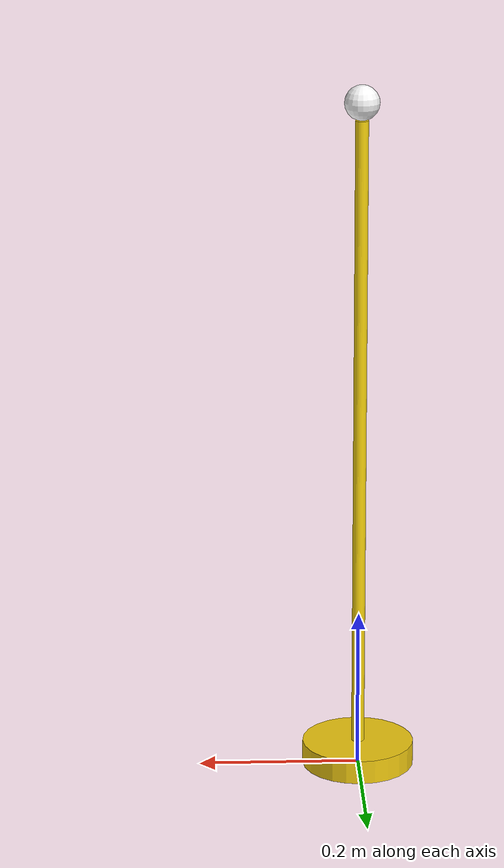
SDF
<?xml version="1.0"?>
<sdf version="1.7">
  <model name="yellow_flare">
    <static>0</static>
    <allow_auto_disable>1</allow_auto_disable>

    <link name="link_0">
      <inertial>
        <mass>0.8</mass>
        <pose>0 0 0.35 0 0 0</pose>
        <inertia>
          <ixx>0.0427</ixx><ixy>0</ixy><ixz>0</ixz>
          <iyy>0.0427</iyy><iyz>0</iyz>
          <izz>0.0002</izz>
        </inertia>
      </inertial>
      <gravity>1</gravity>
      <self_collide>0</self_collide>

      <visual name="foot">
        <pose>0 0 0.015 0 0 0</pose>
        <geometry><cylinder><radius>0.07</radius><length>0.03</length></cylinder></geometry>
        <material>
          <ambient>0.38 0.32 0.02 1</ambient>
          <diffuse>0.93 0.78 0.06 1</diffuse>
          <specular>0.05 0.05 0.05 1</specular>
        </material>
      </visual>

      <visual name="pole">
        <pose>0 0 0.43 0 0 0</pose>
        <geometry><cylinder><radius>0.008</radius><length>0.80</length></cylinder></geometry>
        <material>
          <ambient>0.40 0.34 0.02 1</ambient>
          <diffuse>0.96 0.82 0.05 1</diffuse>
          <specular>0.05 0.05 0.05 1</specular>
        </material>
      </visual>

      <visual name="ball">
        <pose>0 0 0.8515 0 0 0</pose>
        <geometry><sphere><radius>0.0215</radius></sphere></geometry>
        <material>
          <ambient>0.75 0.75 0.75 1</ambient>
          <diffuse>0.97 0.97 0.97 1</diffuse>
          <specular>0.30 0.30 0.30 1</specular>
        </material>
      </visual>

      <collision name="foot_collision">
        <pose>0 0 0.015 0 0 0</pose>
        <geometry><cylinder><radius>0.07</radius><length>0.03</length></cylinder></geometry>
        <surface>
          <friction><ode><mu>1</mu><mu2>1</mu2></ode></friction>
        </surface>
      </collision>

      <collision name="pole_collision">
        <pose>0 0 0.44 0 0 0</pose>
        <geometry><cylinder><radius>0.008</radius><length>0.845</length></cylinder></geometry>
        <surface>
          <friction><ode><mu>1</mu><mu2>1</mu2></ode></friction>
        </surface>
      </collision>
    </link>
  </model>
</sdf>
